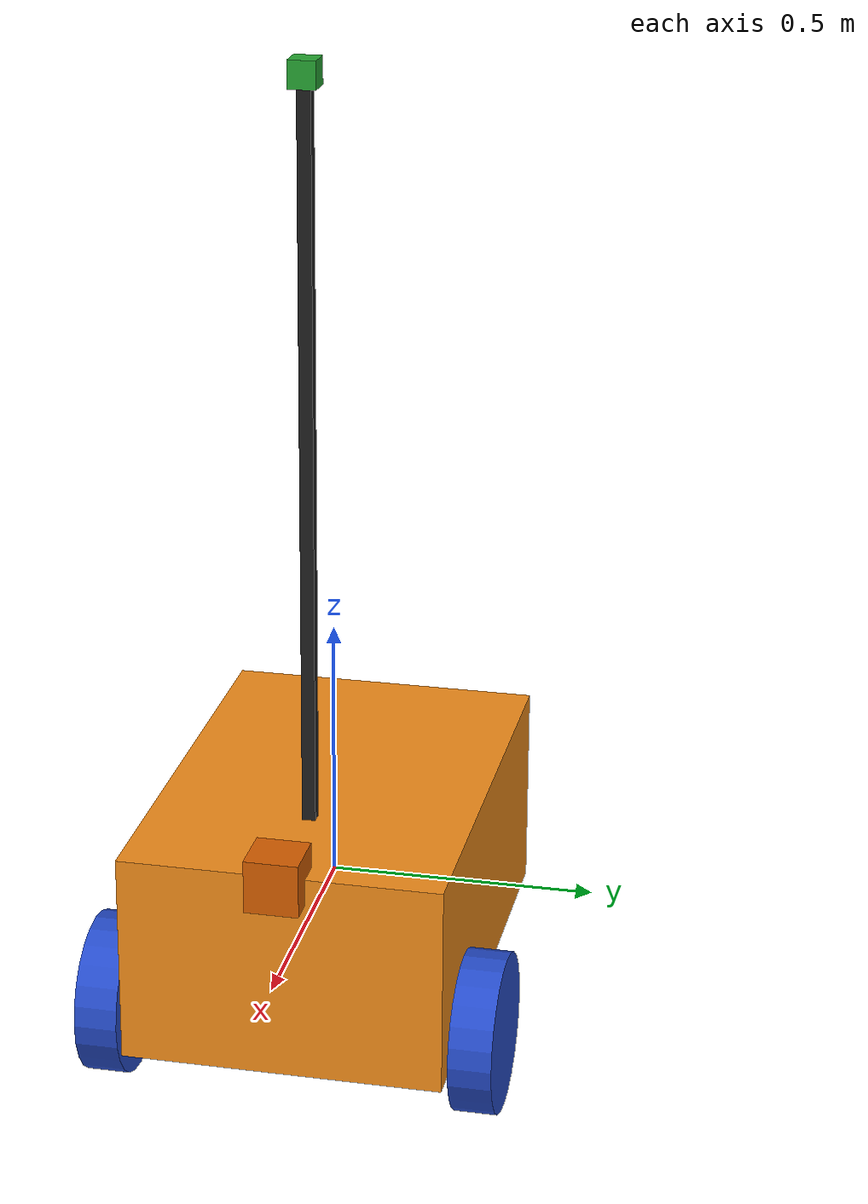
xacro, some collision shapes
<?xml version='1.0'?>

<robot name="myrobot"
  xmlns:xacro="http://www.ros.org/wiki/xacro">

  <xacro:property name="cameraSize" value="0.05"/>
  <xacro:property name="cameraMass" value="0.1"/>

  <xacro:include filename="$(find mybot_description)/urdf/mybot.gazebo" />
  <xacro:include filename="$(find mybot_description)/urdf/materials.xacro" />
  <xacro:include filename="$(find mybot_description)/urdf/macros.xacro" />

  <link name='chassis'>
    <pose>0 0 0.5 0 0 0</pose>

    <inertial>
      <mass value="15.0"/>
      <origin xyz="0.0 0 0.1" rpy=" 0 0 0"/>
      <inertia ixx="0.1" ixy="0" ixz="0" iyy="0.1" iyz="0" izz="0.1" />
    </inertial>

    <collision name='collision'>
      <geometry>
        <box size=".9 .6 .4"/>
      </geometry>
    </collision>

    <visual name='chassis_visual'>
      <origin xyz="0 0 0" rpy=" 0 0 0"/>
      <geometry>
        <box size=".9 .6 .4"/>
      </geometry>
    </visual>

    <collision name='caster_collision'>
      <origin xyz="-0.15 0 -0.18" rpy=" 0 0 0"/>
      <geometry>
        <sphere radius="0.15"/>
      </geometry>
      <surface>
        <friction>
          <ode>
            <mu>0</mu>
            <mu2>0</mu2>
            <slip1>1.0</slip1>
            <slip2>1.0</slip2>
          </ode>
        </friction>
      </surface>
    </collision>

    <visual name='caster_visual'>
      <origin xyz="-0.15 0 -0.18" rpy=" 0 0 0"/>
      <geometry>
        <sphere radius="0.15"/>
      </geometry>
    </visual>

  </link>

  <link name="left_wheel">
    <!--origin xyz="0.1 0.13 0.1" rpy="0 1.5707 1.5707"/-->
    <collision name="collision">
      <origin xyz="0 0 0" rpy="0 1.5707 1.5707"/>
      <geometry>
        <cylinder radius="0.15" length="0.08"/>
      </geometry>
    </collision>
    <visual name="left_wheel_visual">
      <origin xyz="0 0 0" rpy="0 1.5707 1.5707"/>
      <geometry>
        <cylinder radius="0.15" length="0.08"/>
      </geometry>
    </visual>
    <inertial>
      <origin xyz="0 0 0" rpy="0 1.5707 1.5707"/>
      <mass value="5"/>
      <inertia ixx=".1" ixy="0.0" ixz="0.0" iyy=".1" iyz="0.0" izz=".1"/>
    </inertial>
  </link>

  <link name="right_wheel">
    <!--origin xyz="0.1 -0.13 0.1" rpy="0 1.5707 1.5707"/-->
    <collision name="collision">
      <origin xyz="0 0 0" rpy="0 1.5707 1.5707"/>
      <geometry>
        <cylinder radius="0.15" length="0.08"/>
      </geometry>
    </collision>
    <visual name="right_wheel_visual">
      <origin xyz="0 0 0" rpy="0 1.5707 1.5707"/>
      <geometry>
        <cylinder radius="0.15" length="0.08"/>
      </geometry>
    </visual>
    <inertial>
      <origin xyz="0 0 0" rpy="0 1.5707 1.5707"/>
      <mass value="5"/>
      <inertia ixx=".1" ixy="0.0" ixz="0.0" iyy=".1" iyz="0.0" izz=".1"/>
    </inertial>
  </link>

  <joint type="continuous" name="left_wheel_hinge">
    <origin xyz="0.3 0.35 -0.15" rpy="0 0 0"/>
    <!--origin xyz="0.1 0.13 0" rpy="0 1.5707 1.5707"/-->
    <child link="left_wheel"/>
    <parent link="chassis"/>
    <axis xyz="0 1 0" rpy="0 0 0"/>
    <limit effort="10000" velocity="1000"/>
    <joint_properties damping="1.0" friction="1.0"/>
  </joint>

  <joint type="continuous" name="right_wheel_hinge">
    <origin xyz="0.3 -0.35 -0.15" rpy="0 0 0"/>
    <!--origin xyz="0.1 -0.13 0" rpy="0 1.5707 1.5707"/-->
    <child link="right_wheel"/>
    <parent link="chassis"/>
    <axis xyz="0 1 0" rpy="0 0 0"/>
    <limit effort="10000" velocity="1000"/>
    <joint_properties damping="1.0" friction="1.0"/>
  </joint>

  <link name="camera">
    <collision>
      <origin xyz="0 0 0.5" rpy="0 0 0"/>
      <geometry>
        <box size="${cameraSize} ${cameraSize} ${cameraSize}"/>
      </geometry>
    </collision>

    <visual>
      <origin xyz="0 0 0.5" rpy="0 0 0"/>
      <geometry>
        <box size="${cameraSize} ${cameraSize} ${cameraSize}"/>
      </geometry>
      <material name="green"/>
    </visual>

    <inertial>
      <mass value="${cameraMass}" />
      <origin xyz="0 0 0.5" rpy="0 0 0"/>
      <box_inertia m="${cameraMass}" x="${cameraSize}" y="${cameraSize}" z="${cameraSize}" />
      <inertia ixx="1e-6" ixy="0" ixz="0" iyy="1e-6" iyz="0" izz="1e-6" />
    </inertial>
  </link>

  <joint name="camera_joint" type="fixed">
    <axis xyz="0 0 0" />
    <origin xyz="0 0 0.3" rpy="0 0 0"/>
    <parent link="camera_stick"/>
    <child link="camera"/>
  </joint>

  <link name="camera_stick">
    <collision>
      <origin xyz="0 0 0" rpy="0 0 0"/>
      <geometry>
        <box size="${cameraSize/2} ${cameraSize/2} 1.37"/>
      </geometry>
    </collision>

    <visual>
      <origin xyz="0 0 0.1" rpy="0 0 0"/>
      <geometry>
        <box size="${cameraSize/2} ${cameraSize/2} 1.37"/>
      </geometry>
      <material name="black"/>
    </visual>

    <inertial>
      <mass value="${cameraMass}" />
      <origin xyz="0 0 0.1" rpy="0 0 0"/>
      <box_inertia m="${cameraMass}" x="${cameraSize}" y="${cameraSize}" z="${cameraSize}" />
      <inertia ixx="1e-6" ixy="0" ixz="0" iyy="1e-6" iyz="0" izz="1e-6" />
    </inertial>
  </link>

  <joint name="camera_stick_joint" type="fixed">
    <axis xyz="0 0 0" />
    <origin xyz="0.2 0 0.786" rpy="0 0 0"/>
    <parent link="chassis"/>
    <child link="camera_stick"/>
  </joint>

  <joint name="laser_joint" type="fixed">
    <axis xyz="0 0 0" />
    <origin xyz=".45 0 .2" rpy="0 0 0"/>
    <parent link="chassis"/>
    <child link="laser"/>
  </joint>

  <!-- Hokuyo Laser -->
  <link name="laser">
    <collision>
      <origin xyz="0 0 0" rpy="0 0 0"/>
      <geometry>
        <box size="0.1 0.1 0.1"/>
      </geometry>
    </collision>

    <visual>
      <origin xyz="0 0 0" rpy="0 0 0"/>
      <geometry>
        <mesh filename="package://mybot_description/meshes/hokuyo.dae"/>
      </geometry>
    </visual>

    <inertial>
      <mass value="1e-5" />
      <origin xyz="0 0 0" rpy="0 0 0"/>
      <inertia ixx="1e-6" ixy="0" ixz="0" iyy="1e-6" iyz="0" izz="1e-6" />
    </inertial>
  </link>

</robot>
